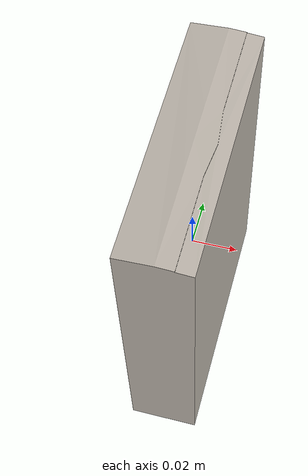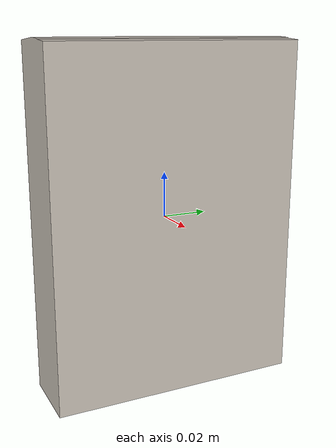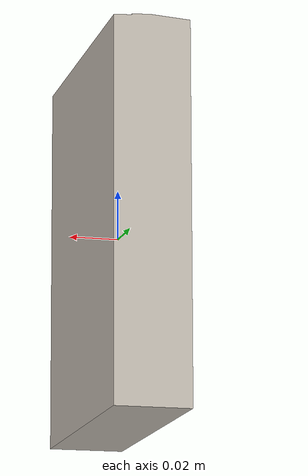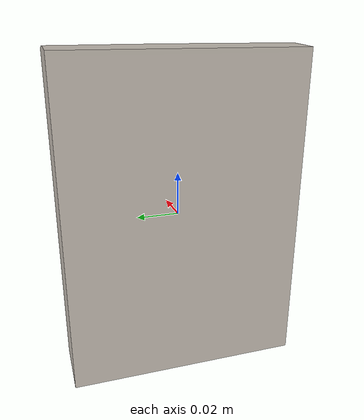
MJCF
<mujoco model="cereal_21">
  <asset>
    <mesh file="visual/model_normalized_0.obj" name="model_normalized_0_vis" scale="0.15499999999999997 0.15499999999999997 0.15499999999999997" refquat="0.7071067811865475 0.0 0.0 0.7071067811865476" />
    <texture type="2d" name="image0" file="visual/image0.png" />
    <material name="Material__25.007" texture="image0" specular="0.5" shininess="0.359999993" />
  </asset>
  <worldbody>
    <body>
      <body name="object">
        <geom solimp="0.998 0.998 0.001" solref="0.001 1" density="100" friction="0.95 0.3 0.1" type="mesh" mesh="model_normalized_0_vis" conaffinity="0" contype="0" group="1" material="Material__25.007" />
        <geom solimp="0.998 0.998 0.001" solref="0.001 1" density="100" friction="0.95 0.3 0.1" type="box" group="0" rgba="0.8 0.8 0.8 0.0" size="0.015426581149999997 0.056274259699999996 0.07691804862499999" pos="0.0 0.0 -0.0005819513750000005" />
      </body>
      <site rgba="0 0 0 0" size="0.005" pos="0.0 0.0 -0.07749999999999999" name="bottom_site" />
      <site rgba="0 0 0 0" size="0.005" pos="0.0 0.0 0.07633609724999998" name="top_site" />
      <site rgba="0 0 0 0" size="0.005" pos="0.015426581149999997 0.056274259699999996 -0.0005819513750000013" name="horizontal_radius_site" />
    </body>
    </worldbody>
</mujoco>
